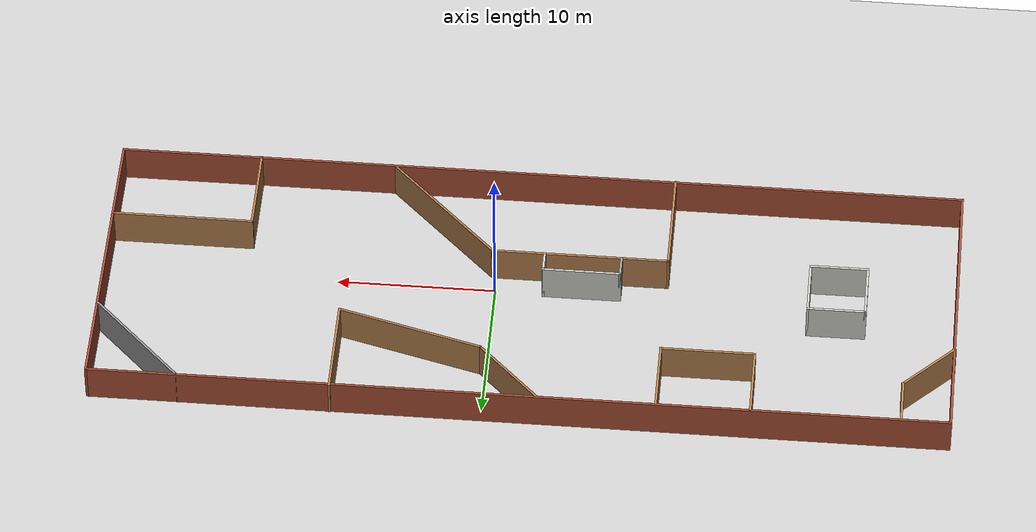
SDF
<sdf version="1.6">
 <world name="default">
  <light name="sun" type="directional">
   <pose>0 0 10 0 -0 0</pose>
   <diffuse>0.8 0.8 0.8 1</diffuse>
   <specular>0.2 0.2 0.2 1</specular>
   <attenuation>
    <range>1000</range>
    <constant>0.9</constant>
    <linear>0.01</linear>
    <quadratic>0.001</quadratic>
   </attenuation>
   <direction>-0.5 0.1 -0.9</direction>
  </light>
  <model name="ground_plane">
   <static>1</static>
   <link name="link">
    <collision name="collision">
     <geometry><plane><normal>0 0 1</normal><size>100 100</size></plane></geometry>
     <surface><friction><ode><mu>100</mu><mu2>50</mu2></ode></friction></surface>
    </collision>
    <visual name="visual">
     <cast_shadows>0</cast_shadows>
     <geometry><plane><normal>0 0 1</normal><size>100 100</size></plane></geometry>
     <material>
      <script><uri>file://media/materials/scripts/gazebo.material</uri><name>Gazebo/Grey</name></script>
     </material>
    </visual>
   </link>
  </model>
  <gravity>0 0 -9.8</gravity>
  <magnetic_field>6e-06 2.3e-05 -4.2e-05</magnetic_field>
  <atmosphere type="adiabatic"/>
  <physics name="default_physics" default="0" type="ode">
   <max_step_size>0.001</max_step_size>
   <real_time_factor>1</real_time_factor>
   <real_time_update_rate>1000</real_time_update_rate>
  </physics>
  <scene><ambient>0.4 0.4 0.4 1</ambient><background>0.7 0.7 0.7 1</background><shadows>1</shadows></scene>
  <spherical_coordinates>
   <surface_model>EARTH_WGS84</surface_model>
   <latitude_deg>0</latitude_deg>
   <longitude_deg>0</longitude_deg>
   <elevation>0</elevation>
   <heading_deg>0</heading_deg>
  </spherical_coordinates>
  <model name="CustomHouse">
   <pose>-2.30255 1.38232 0 0 -0 0</pose>
   <link name="Wall_0">
    <collision name="Wall_0_Collision">
     <geometry><box><size>53.75 0.15 2.5</size></box></geometry>
     <pose>0 0 1.25 0 -0 0</pose>
    </collision>
    <visual name="Wall_0_Visual">
     <pose>0 0 1.25 0 -0 0</pose>
     <geometry><box><size>53.75 0.15 2.5</size></box></geometry>
     <material>
      <script><uri>file://media/materials/scripts/gazebo.material</uri><name>Gazebo/Bricks</name></script>
      <ambient>1 1 1 1</ambient>
     </material>
     <meta><layer>0</layer></meta>
    </visual>
    <pose>0.022462 -9.43673 0 0 -0 0</pose>
   </link>
   <link name="Wall_1">
    <collision name="Wall_1_Collision">
     <geometry><box><size>19 0.15 2.5</size></box></geometry>
     <pose>0 0 1.25 0 -0 0</pose>
    </collision>
    <visual name="Wall_1_Visual">
     <pose>0 0 1.25 0 -0 0</pose>
     <geometry><box><size>19 0.15 2.5</size></box></geometry>
     <material>
      <script><uri>file://media/materials/scripts/gazebo.material</uri><name>Gazebo/Bricks</name></script>
      <ambient>1 1 1 1</ambient>
     </material>
     <meta><layer>0</layer></meta>
    </visual>
    <pose>26.8225 -0.011732 0 0 -0 1.5708</pose>
   </link>
   <link name="Wall_11">
    <collision name="Wall_11_Collision">
     <geometry><box><size>11.25 0.15 2.5</size></box></geometry>
     <pose>0 0 1.25 0 -0 0</pose>
    </collision>
    <visual name="Wall_11_Visual">
     <pose>0 0 1.25 0 -0 0</pose>
     <geometry><box><size>11.25 0.15 2.5</size></box></geometry>
     <material>
      <script><uri>file://media/materials/scripts/gazebo.material</uri><name>Gazebo/Wood</name></script>
      <ambient>1 1 1 1</ambient>
     </material>
     <meta><layer>0</layer></meta>
    </visual>
    <pose>-2.9814 -2.62851 0 0 -0 0</pose>
   </link>
   <link name="Wall_12">
    <collision name="Wall_12_Collision">
     <geometry><box><size>9.75 0.15 2.5</size></box></geometry>
     <pose>0 0 1.25 0 -0 0</pose>
    </collision>
    <visual name="Wall_12_Visual">
     <pose>0 0 1.25 0 -0 0</pose>
     <geometry><box><size>9.75 0.15 2.5</size></box></geometry>
     <material>
      <script><uri>file://media/materials/scripts/gazebo.material</uri><name>Gazebo/Wood</name></script>
      <ambient>1 1 1 1</ambient>
     </material>
     <meta><layer>0</layer></meta>
    </visual>
    <pose>5.96272 -6.02262 0 0 0 -0.785398</pose>
   </link>
   <link name="Wall_14">
    <collision name="Wall_14_Collision">
     <geometry><box><size>5.5 0.15 2.5</size></box></geometry>
     <pose>0 0 1.25 0 -0 0</pose>
    </collision>
    <visual name="Wall_14_Visual">
     <pose>0 0 1.25 0 -0 0</pose>
     <geometry><box><size>5.5 0.15 2.5</size></box></geometry>
     <material>
      <script><uri>file://media/materials/scripts/gazebo.material</uri><name>Gazebo/Wood</name></script>
      <ambient>1 1 1 1</ambient>
     </material>
     <meta><layer>0</layer></meta>
    </visual>
    <pose>0.740115 7.43998 0 0 0 -0.785398</pose>
   </link>
   <link name="Wall_15">
    <collision name="Wall_15_Collision">
     <geometry><box><size>9.5 0.15 2.5</size></box></geometry>
     <pose>0 0 1.25 0 -0 0</pose>
    </collision>
    <visual name="Wall_15_Visual">
     <pose>0 0 1.25 0 -0 0</pose>
     <geometry><box><size>9.5 0.15 2.5</size></box></geometry>
     <material>
      <script><uri>file://media/materials/scripts/gazebo.material</uri><name>Gazebo/Wood</name></script>
      <ambient>1 1 1 1</ambient>
     </material>
     <meta><layer>0</layer></meta>
    </visual>
    <pose>7.14733 4.33849 0 0 0 -0.261799</pose>
   </link>
   <link name="Wall_17">
    <collision name="Wall_17_Collision">
     <geometry><box><size>0.15 0.15 2.5</size></box></geometry>
     <pose>0 0 1.25 0 -0 0</pose>
    </collision>
    <visual name="Wall_17_Visual">
     <pose>0 0 1.25 0 -0 0</pose>
     <geometry><box><size>0.15 0.15 2.5</size></box></geometry>
     <material>
      <script><uri>file://media/materials/scripts/gazebo.material</uri><name>Gazebo/Grey</name></script>
      <ambient>1 1 1 1</ambient>
     </material>
     <meta><layer>0</layer></meta>
    </visual>
    <pose>11.663 9.22851 0 0 -0 0</pose>
   </link>
   <link name="Wall_19">
    <collision name="Wall_19_Collision">
     <geometry><box><size>6.5 0.15 2.5</size></box></geometry>
     <pose>0 0 1.25 0 -0 0</pose>
    </collision>
    <visual name="Wall_19_Visual">
     <pose>0 0 1.25 0 -0 0</pose>
     <geometry><box><size>6.5 0.15 2.5</size></box></geometry>
     <material>
      <script><uri>file://media/materials/scripts/gazebo.material</uri><name>Gazebo/Wood</name></script>
      <ambient>1 1 1 1</ambient>
     </material>
     <meta><layer>0</layer></meta>
    </visual>
    <pose>11.663 6.30351 0 0 -0 1.5708</pose>
   </link>
   <link name="Wall_2">
    <collision name="Wall_2_Collision">
     <geometry><box><size>53.75 0.15 2.5</size></box></geometry>
     <pose>0 0 1.25 0 -0 0</pose>
    </collision>
    <visual name="Wall_2_Visual">
     <pose>0 0 1.25 0 -0 0</pose>
     <geometry><box><size>53.75 0.15 2.5</size></box></geometry>
     <material>
      <script><uri>file://media/materials/scripts/gazebo.material</uri><name>Gazebo/Bricks</name></script>
      <ambient>1 1 1 1</ambient>
     </material>
     <meta><layer>0</layer></meta>
    </visual>
    <pose>0.022462 9.41327 0 0 -0 3.14159</pose>
   </link>
   <link name="Wall_21">
    <collision name="Wall_21_Collision">
     <geometry><box><size>9 0.15 2.5</size></box></geometry>
     <pose>0 0 1.25 0 -0 0</pose>
    </collision>
    <visual name="Wall_21_Visual">
     <pose>0 0 1.25 0 -0 0</pose>
     <geometry><box><size>9 0.15 2.5</size></box></geometry>
     <material>
      <script><uri>file://media/materials/scripts/gazebo.material</uri><name>Gazebo/Wood</name></script>
      <ambient>1 1 1 1</ambient>
     </material>
     <meta><layer>0</layer></meta>
    </visual>
    <pose>22.3836 -3.86851 0 0 -0 3.14159</pose>
   </link>
   <link name="Wall_22">
    <collision name="Wall_22_Collision">
     <geometry><box><size>5.75 0.15 2.5</size></box></geometry>
     <pose>0 0 1.25 0 -0 0</pose>
    </collision>
    <visual name="Wall_22_Visual">
     <pose>0 0 1.25 0 -0 0</pose>
     <geometry><box><size>5.75 0.15 2.5</size></box></geometry>
     <material>
      <script><uri>file://media/materials/scripts/gazebo.material</uri><name>Gazebo/Wood</name></script>
      <ambient>1 1 1 1</ambient>
     </material>
     <meta><layer>0</layer></meta>
    </visual>
    <pose>17.9586 -6.66851 0 0 0 -1.5708</pose>
   </link>
   <link name="Wall_24">
    <collision name="Wall_24_Collision">
     <geometry><box><size>8 0.15 2.5</size></box></geometry>
     <pose>0 0 1.25 0 -0 0</pose>
    </collision>
    <visual name="Wall_24_Visual">
     <pose>0 0 1.25 0 -0 0</pose>
     <geometry><box><size>8 0.15 2.5</size></box></geometry>
     <material>
      <script><uri>file://media/materials/scripts/gazebo.material</uri><name>Gazebo/Grey</name></script>
      <ambient>1 1 1 1</ambient>
     </material>
     <meta><layer>0</layer></meta>
    </visual>
    <pose>23.984 6.6161 0 0 0 -0.785398</pose>
   </link>
   <link name="Wall_27">
    <collision name="Wall_27_Collision">
     <geometry><box><size>3.75 0.15 2.5</size></box></geometry>
     <pose>0 0 1.25 0 -0 0</pose>
    </collision>
    <visual name="Wall_27_Visual">
     <pose>0 0 1.25 0 -0 0</pose>
     <geometry><box><size>3.75 0.15 2.5</size></box></geometry>
     <material>
      <script><uri>file://media/materials/scripts/gazebo.material</uri><name>Gazebo/CeilingTiled</name></script>
      <ambient>1 1 1 1</ambient>
     </material>
     <meta><layer>0</layer></meta>
    </visual>
    <pose>-21.0914 -1.14851 0 0 0 -1.5708</pose>
   </link>
   <link name="Wall_28">
    <collision name="Wall_28_Collision">
     <geometry><box><size>3.75 0.15 2.5</size></box></geometry>
     <pose>0 0 1.25 0 -0 0</pose>
    </collision>
    <visual name="Wall_28_Visual">
     <pose>0 0 1.25 0 -0 0</pose>
     <geometry><box><size>3.75 0.15 2.5</size></box></geometry>
     <material>
      <script><uri>file://media/materials/scripts/gazebo.material</uri><name>Gazebo/CeilingTiled</name></script>
      <ambient>1 1 1 1</ambient>
     </material>
     <meta><layer>0</layer></meta>
    </visual>
    <pose>-19.2914 -2.94851 0 0 -0 0</pose>
   </link>
   <link name="Wall_29">
    <collision name="Wall_29_Collision">
     <geometry><box><size>3.75 0.15 2.5</size></box></geometry>
     <pose>0 0 1.25 0 -0 0</pose>
    </collision>
    <visual name="Wall_29_Visual">
     <pose>0 0 1.25 0 -0 0</pose>
     <geometry><box><size>3.75 0.15 2.5</size></box></geometry>
     <material>
      <script><uri>file://media/materials/scripts/gazebo.material</uri><name>Gazebo/CeilingTiled</name></script>
      <ambient>1 1 1 1</ambient>
     </material>
     <meta><layer>0</layer></meta>
    </visual>
    <pose>-17.4914 -1.14851 0 0 -0 1.5708</pose>
   </link>
   <link name="Wall_3">
    <collision name="Wall_3_Collision">
     <geometry><box><size>19 0.15 2.5</size></box></geometry>
     <pose>0 0 1.25 0 -0 0</pose>
    </collision>
    <visual name="Wall_3_Visual">
     <pose>0 0 1.25 0 -0 0</pose>
     <geometry><box><size>19 0.15 2.5</size></box></geometry>
     <material>
      <script><uri>file://media/materials/scripts/gazebo.material</uri><name>Gazebo/Bricks</name></script>
      <ambient>1 1 1 1</ambient>
     </material>
     <meta><layer>0</layer></meta>
    </visual>
    <pose>-26.7775 -0.011732 0 0 0 -1.5708</pose>
   </link>
   <link name="Wall_30">
    <collision name="Wall_30_Collision">
     <geometry><box><size>3.75 0.15 2.5</size></box></geometry>
     <pose>0 0 1.25 0 -0 0</pose>
    </collision>
    <visual name="Wall_30_Visual">
     <pose>0 0 1.25 0 -0 0</pose>
     <geometry><box><size>3.75 0.15 2.5</size></box></geometry>
     <material>
      <script><uri>file://media/materials/scripts/gazebo.material</uri><name>Gazebo/CeilingTiled</name></script>
      <ambient>1 1 1 1</ambient>
     </material>
     <meta><layer>0</layer></meta>
    </visual>
    <pose>-19.2914 0.65149 0 0 -0 3.14159</pose>
   </link>
   <link name="Wall_32">
    <collision name="Wall_32_Collision">
     <geometry><box><size>4.5 0.15 2.5</size></box></geometry>
     <pose>0 0 1.25 0 -0 0</pose>
    </collision>
    <visual name="Wall_32_Visual">
     <pose>0 0 1.25 0 -0 0</pose>
     <geometry><box><size>4.5 0.15 2.5</size></box></geometry>
     <material>
      <script><uri>file://media/materials/scripts/gazebo.material</uri><name>Gazebo/Wood</name></script>
      <ambient>1 1 1 1</ambient>
     </material>
     <meta><layer>0</layer></meta>
    </visual>
    <pose>-25.2534 4.86945 0 0 -0 0.785398</pose>
   </link>
   <link name="Wall_33">
    <collision name="Wall_33_Collision">
     <geometry><box><size>3 0.15 2.5</size></box></geometry>
     <pose>0 0 1.25 0 -0 0</pose>
    </collision>
    <visual name="Wall_33_Visual">
     <pose>0 0 1.25 0 -0 0</pose>
     <geometry><box><size>3 0.15 2.5</size></box></geometry>
     <material>
      <script><uri>file://media/materials/scripts/gazebo.material</uri><name>Gazebo/Wood</name></script>
      <ambient>1 1 1 1</ambient>
     </material>
     <meta><layer>0</layer></meta>
    </visual>
    <pose>-23.7155 7.8324 0 0 -0 1.5708</pose>
   </link>
   <link name="Wall_35">
    <collision name="Wall_35_Collision">
     <geometry><box><size>1.5 0.15 2.5</size></box></geometry>
     <pose>0 0 1.25 0 -0 0</pose>
    </collision>
    <visual name="Wall_35_Visual">
     <pose>0 0 1.25 0 -0 0</pose>
     <geometry><box><size>1.5 0.15 2.5</size></box></geometry>
     <material>
      <script><uri>file://media/materials/scripts/gazebo.material</uri><name>Gazebo/Grey</name></script>
      <ambient>1 1 1 1</ambient>
     </material>
     <meta><layer>0</layer></meta>
    </visual>
    <pose>-5.5914 -1.97351 0 0 -0 1.5708</pose>
   </link>
   <link name="Wall_36">
    <collision name="Wall_36_Collision">
     <geometry><box><size>5 0.15 2.5</size></box></geometry>
     <pose>0 0 1.25 0 -0 0</pose>
    </collision>
    <visual name="Wall_36_Visual">
     <pose>0 0 1.25 0 -0 0</pose>
     <geometry><box><size>5 0.15 2.5</size></box></geometry>
     <material>
      <script><uri>file://media/materials/scripts/gazebo.material</uri><name>Gazebo/CeilingTiled</name></script>
      <ambient>1 1 1 1</ambient>
     </material>
     <meta><layer>0</layer></meta>
    </visual>
    <pose>-3.1664 -1.29851 0 0 -0 0</pose>
   </link>
   <link name="Wall_37">
    <collision name="Wall_37_Collision">
     <geometry><box><size>1.5 0.15 2.5</size></box></geometry>
     <pose>0 0 1.25 0 -0 0</pose>
    </collision>
    <visual name="Wall_37_Visual">
     <pose>0 0 1.25 0 -0 0</pose>
     <geometry><box><size>1.5 0.15 2.5</size></box></geometry>
     <material>
      <script><uri>file://media/materials/scripts/gazebo.material</uri><name>Gazebo/CeilingTiled</name></script>
      <ambient>1 1 1 1</ambient>
     </material>
     <meta><layer>0</layer></meta>
    </visual>
    <pose>-0.741396 -1.97351 0 0 0 -1.5708</pose>
   </link>
   <link name="Wall_5">
    <collision name="Wall_5_Collision">
     <geometry><box><size>4.75 0.15 2.5</size></box></geometry>
     <pose>0 0 1.25 0 -0 0</pose>
    </collision>
    <visual name="Wall_5_Visual">
     <pose>0 0 1.25 0 -0 0</pose>
     <geometry><box><size>4.75 0.15 2.5</size></box></geometry>
     <material>
      <script><uri>file://media/materials/scripts/gazebo.material</uri><name>Gazebo/Wood</name></script>
      <ambient>1 1 1 1</ambient>
     </material>
     <meta><layer>0</layer></meta>
    </visual>
    <pose>-8.5714 7.05149 0 0 0 -1.5708</pose>
   </link>
   <link name="Wall_6">
    <collision name="Wall_6_Collision">
     <geometry><box><size>6 0.15 2.5</size></box></geometry>
     <pose>0 0 1.25 0 -0 0</pose>
    </collision>
    <visual name="Wall_6_Visual">
     <pose>0 0 1.25 0 -0 0</pose>
     <geometry><box><size>6 0.15 2.5</size></box></geometry>
     <material>
      <script><uri>file://media/materials/scripts/gazebo.material</uri><name>Gazebo/Wood</name></script>
      <ambient>1 1 1 1</ambient>
     </material>
     <meta><layer>0</layer></meta>
    </visual>
    <pose>-11.4964 4.75149 0 0 -0 3.14159</pose>
   </link>
   <link name="Wall_7">
    <collision name="Wall_7_Collision">
     <geometry><box><size>4.75 0.15 2.5</size></box></geometry>
     <pose>0 0 1.25 0 -0 0</pose>
    </collision>
    <visual name="Wall_7_Visual">
     <pose>0 0 1.25 0 -0 0</pose>
     <geometry><box><size>4.75 0.15 2.5</size></box></geometry>
     <material>
      <script><uri>file://media/materials/scripts/gazebo.material</uri><name>Gazebo/Wood</name></script>
      <ambient>1 1 1 1</ambient>
     </material>
     <meta><layer>0</layer></meta>
    </visual>
    <pose>-14.4214 7.05149 0 0 -0 1.5708</pose>
   </link>
   <link name="Wall_9">
    <collision name="Wall_9_Collision">
     <geometry><box><size>7 0.15 2.5</size></box></geometry>
     <pose>0 0 1.25 0 -0 0</pose>
    </collision>
    <visual name="Wall_9_Visual">
     <pose>0 0 1.25 0 -0 0</pose>
     <geometry><box><size>7 0.15 2.5</size></box></geometry>
     <material>
      <script><uri>file://media/materials/scripts/gazebo.material</uri><name>Gazebo/Wood</name></script>
      <ambient>1 1 1 1</ambient>
     </material>
     <meta><layer>0</layer></meta>
    </visual>
    <pose>-8.5314 -6.05351 0 0 0 -1.5708</pose>
   </link>
   <static>1</static>
  </model>
 </world>
</sdf>
